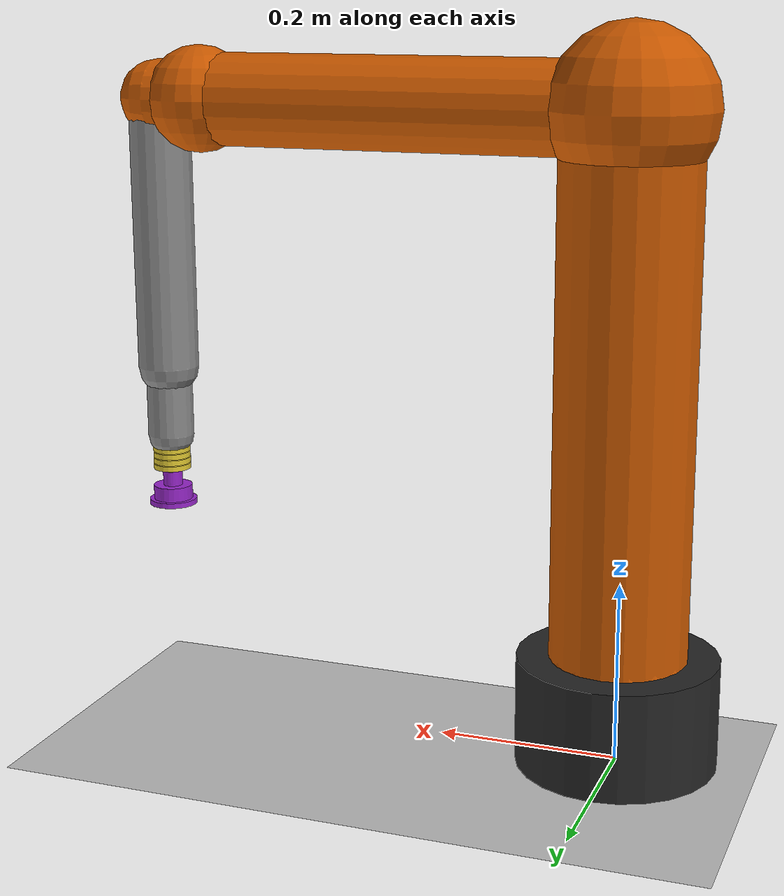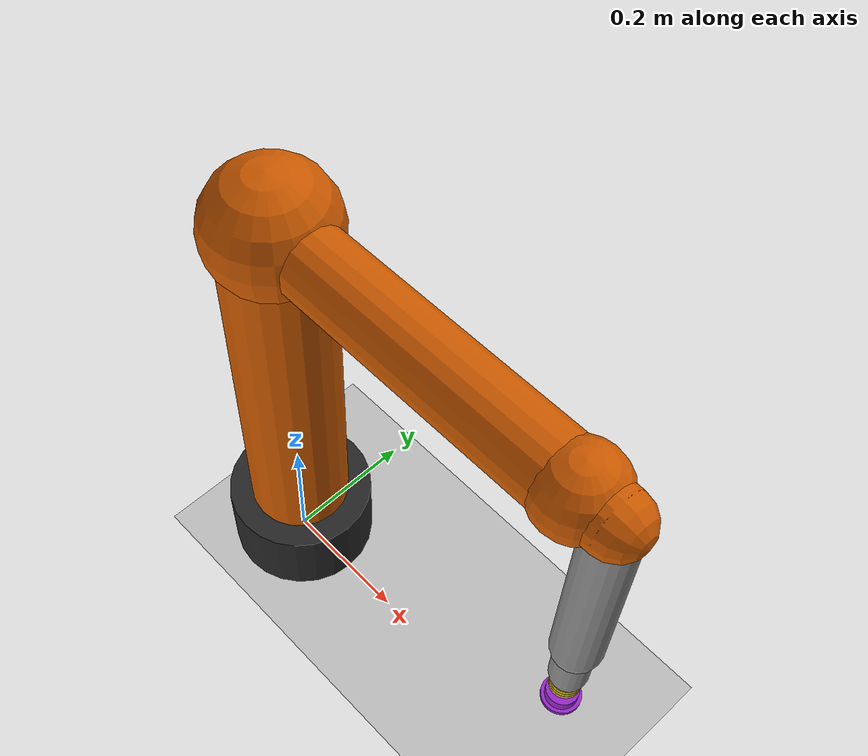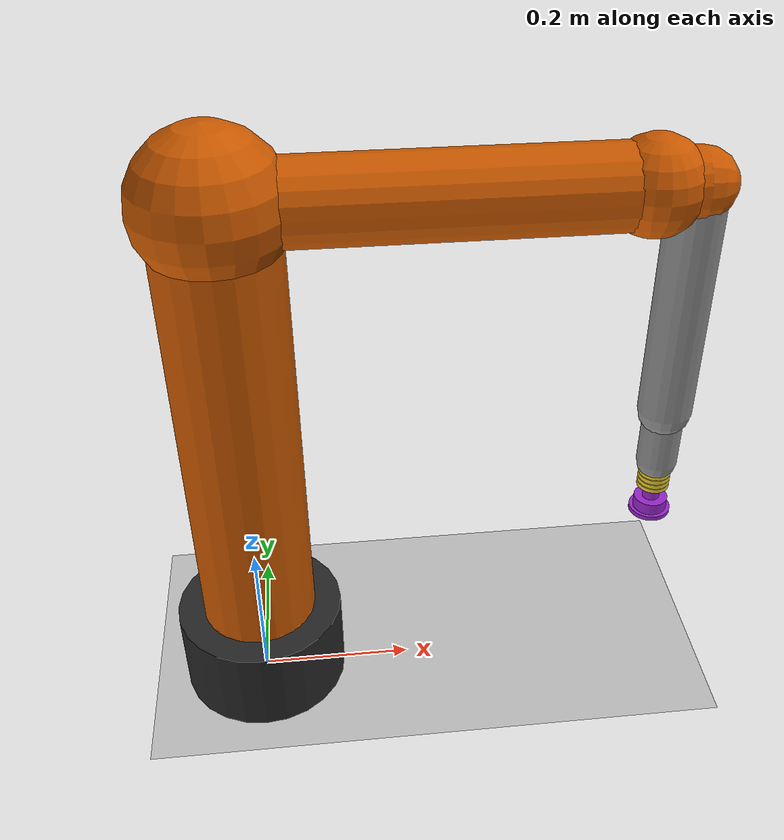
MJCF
<mujoco model="kr6">

  <compiler angle="radian"/>

  <option gravity="0 0 -9.81" timestep="0.002"/>

  <visual>
    <headlight diffuse="0.6 0.6 0.6" ambient="0.3 0.3 0.3" specular="0 0 0"/>
    <rgba haze="0.15 0.25 0.35 1"/>
    <global azimuth="150" elevation="-25"/>
  </visual>

  <default>
    <joint limited="true" damping="10" armature="0.01"/>
    <position kp="300" ctrllimited="true"/>
    <geom contype="1" conaffinity="1"/>
  </default>

  <worldbody>
    <light name="sun" pos="1 1 3" dir="-0.3 -0.3 -1" directional="true" diffuse="0.8 0.8 0.8" specular="0.2 0.2 0.2"/>
    <geom name="floor" type="plane" size="3 3 0.1" rgba="0.75 0.75 0.75 1" contype="1" conaffinity="1"/>

    <!-- Base (fixed to world) -->
    <body name="base" pos="0 0 0">
      <geom name="base_col"  type="cylinder" size="0.110 0.06"  pos="0 0 0.06"  rgba="0.15 0.15 0.15 1"/>
      <geom name="base_post" type="capsule"  size="0.075" fromto="0 0 0.12 0 0 0.68" rgba="0.80 0.35 0.0 1"/>

      <!-- Link 1 : A1  base yaw (Z)  -- base height 700 mm -->
      <body name="link1" pos="0 0 0.700">
        <joint name="A1" axis="0 0 1" range="-2.967 2.967"/>
        <geom name="link1_hub" type="sphere"  size="0.090"                          rgba="0.80 0.35 0.0 1"/>
        <geom name="link1_arm" type="capsule" size="0.052" fromto="0 0 0 0.030 0 0" rgba="0.80 0.35 0.0 1"/>

        <!-- Link 2 : A2  shoulder pitch (Y)  -- upper arm 450 mm -->
        <body name="link2" pos="0.030 0 0">
          <joint name="A2" axis="0 1 0" range="-3.316 0.785"/>
          <geom name="link2_geom" type="capsule" size="0.050" fromto="0 0 0 0.450 0 0" rgba="0.80 0.35 0.0 1"/>

          <!-- Link 3 : A3  elbow pitch (Y)  -- elbow stub 50 mm -->
          <body name="link3" pos="0.450 0 0">
            <joint name="A3" axis="0 1 0" range="-2.094 2.722"/>
            <geom name="link3_hub"  type="sphere"  size="0.058"                         rgba="0.80 0.35 0.0 1"/>
            <geom name="link3_stub" type="capsule" size="0.042" fromto="0 0 0 0.050 0 0" rgba="0.80 0.35 0.0 1"/>

            <!-- Link 4 : A4  forearm roll (X)  -- forearm 300 mm -->
            <body name="link4" pos="0.050 0 0">
              <joint name="A4" axis="1 0 0" range="-3.229 3.229"/>
              <geom name="link4_geom" type="capsule" size="0.034" fromto="0 0 0 0 0 -0.300" rgba="0.55 0.55 0.55 1"/>

              <!-- Link 5 : A5  wrist pitch (Y)  -- wrist 80 mm -->
              <body name="link5" pos="0 0 -0.300">
                <joint name="A5" axis="0 1 0" range="-2.094 2.094"/>
                <geom name="link5_geom" type="capsule" size="0.026" fromto="0 0 0 0 0 -0.080" rgba="0.55 0.55 0.55 1"/>

                <!-- Link 6 : A6  flange roll (Z)  -- flange to EE -->
                <body name="link6" pos="0 0 -0.080">
                  <joint name="A6" axis="0 0 1" range="-6.109 6.109"/>
                  <!-- flange -->
                  <geom name="link6_geom"    type="cylinder" size="0.024 0.006"          pos="0 0  0.000" rgba="0.15 0.15 0.15 1"/>
                  <!-- suction cup: threaded body (gold) -->
                  <geom name="thread_body"   type="cylinder" size="0.015 0.018"          pos="0 0 -0.024" rgba="0.90 0.80 0.20 1"/>
                  <geom name="thread_r1"     type="cylinder" size="0.021 0.003"          pos="0 0 -0.009" rgba="0.90 0.80 0.20 1"/>
                  <geom name="thread_r2"     type="cylinder" size="0.021 0.003"          pos="0 0 -0.016" rgba="0.90 0.80 0.20 1"/>
                  <geom name="thread_r3"     type="cylinder" size="0.021 0.003"          pos="0 0 -0.023" rgba="0.90 0.80 0.20 1"/>
                  <geom name="thread_r4"     type="cylinder" size="0.021 0.003"          pos="0 0 -0.030" rgba="0.90 0.80 0.20 1"/>
                  <geom name="thread_r5"     type="cylinder" size="0.021 0.003"          pos="0 0 -0.037" rgba="0.90 0.80 0.20 1"/>
                  <!-- suction cup: purple neck -->
                  <geom name="cup_neck"      type="cylinder" size="0.011 0.010"          pos="0 0 -0.052" rgba="0.60 0.15 0.80 1"/>
                  <!-- suction cup: purple bell (wide flat dome) -->
                  <geom name="cup_bell_body" type="cylinder" size="0.022 0.008"          pos="0 0 -0.068" rgba="0.60 0.15 0.80 1"/>
                  <geom name="cup_bell_lip"  type="cylinder" size="0.027 0.003"          pos="0 0 -0.079" rgba="0.60 0.15 0.80 1"/>
                  <!-- ee site at suction face -->
                  <site name="ee_site" pos="0 0 -0.082" size="0.0012" rgba="1 0 0 1"/>
                </body>
              </body>
            </body>
          </body>
        </body>
      </body>
    </body>
  </worldbody>

  <!-- Position actuators -- one per joint -->
  <actuator>
    <position name="A1_pos" joint="A1" kp="500" ctrlrange="-2.967  2.967"/>
    <position name="A2_pos" joint="A2" kp="500" ctrlrange="-3.316  0.785"/>
    <position name="A3_pos" joint="A3" kp="500" ctrlrange="-2.094  2.722"/>
    <position name="A4_pos" joint="A4" kp="200" ctrlrange="-3.229  3.229"/>
    <position name="A5_pos" joint="A5" kp="200" ctrlrange="-2.094  2.094"/>
    <position name="A6_pos" joint="A6" kp="100" ctrlrange="-6.109  6.109"/>
  </actuator>

</mujoco>
